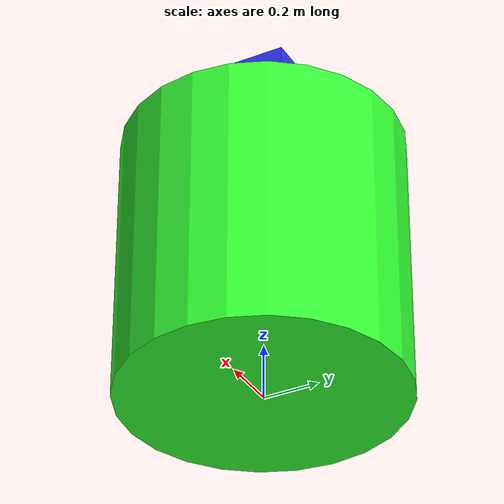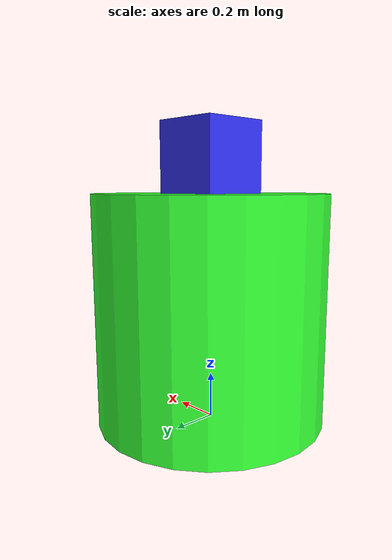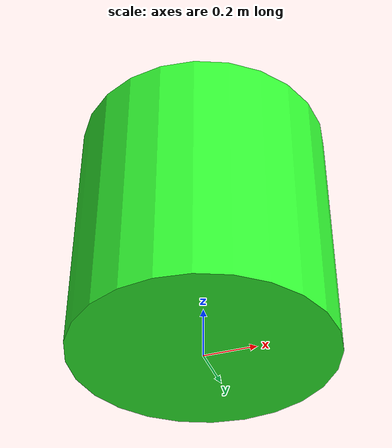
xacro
<?xml version="1.0"?>
<robot xmlns:xacro="http://www.ros.org/wiki/xacro"  name="bipedal_robot">

    <xacro:include filename="include.xacro" />

    <link name="world"></link>

    <joint name="base_joint" type="fixed">
        <origin xyz="0 0 0" rpy="0 0 0"/>
        <parent link="world"/>
        <child link="base_link"/>
    </joint>

    <link name="base_link">
        <visual>
            <origin xyz="0 0 0.5" rpy="0 0 0"/>
            <geometry>
                <cylinder radius="0.5" length="1.0"/>
            </geometry>
            <material name="green">
                <color rgba="0.2 1 0.2 1"/>
            </material>
        </visual>
        <collision>
            <origin xyz="0 0 0.5" rpy="0 0 0"/>
            <geometry>
                <cylinder radius="0.5" length="1.0"/>
            </geometry>
        </collision>
        <xacro:inertial_cylinder mass="0.5" length="1.0" radius="0.5">
            <origin xyz="0 0 0.5" rpy="0 0 0"/>
        </xacro:inertial_cylinder>
    </link>

    <joint name="rotating_joint" type="revolute">
        <origin xyz="0 0 1" rpy="0 0 0"/>
        <parent link="base_link"/>
        <child link="cube_link"/>
        <axis xyz="0 0 1"/>
        <limit lower="-1.5708" upper="1.5708" velocity="100" effort="100"/>
    </joint>

    <link name="cube_link">
        <visual>
            <origin xyz="0 0 0.15" rpy="0 0 0"/>
            <geometry>
                <box size="0.3 0.3 0.3" />
            </geometry>
            <material name="blue" />
        </visual>
        <collision>
            <origin xyz="0 0 0.15" rpy="0 0 0"/>
            <geometry>
                <box size="0.3 0.3 0.3" />
            </geometry>
        </collision>
        <xacro:inertial_box mass="0.5" x="0.3" y="0.3" z="0.3">
            <origin xyz="0 0 0.15" rpy="0 0 0"/>
        </xacro:inertial_box>
    </link>

    <xacro:include filename="test_servo_ros2_control.xacro" />

</robot>

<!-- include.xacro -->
<robot xmlns:xacro="http://www.ros.org/wiki/xacro" >

    <!-- This file is not a robot in and of itself, it just contains some useful tags that could be included in any robot -->

    <!-- Specify some colours -->

    <material name="white">
        <color rgba="1 1 1 1"/>
    </material>

    <material name="orange">
        <color rgba="1 0.3 0.1 1"/>
    </material>

    <material name="blue">
        <color rgba="0.2 0.2 1 1"/>
    </material>

    <!-- Specify some standard inertial calculations https://en.wikipedia.org/wiki/List_of_moments_of_inertia -->
    <!-- These make use of xacro's mathematical functionality -->

    <xacro:macro name="inertial_sphere" params="mass radius *origin">
        <inertial>
            <xacro:insert_block name="origin"/>
            <mass value="${mass}" />
            <inertia ixx="${(2/5) * mass * (radius*radius)}" ixy="0.0" ixz="0.0"
                    iyy="${(2/5) * mass * (radius*radius)}" iyz="0.0"
                    izz="${(2/5) * mass * (radius*radius)}" />
        </inertial>
    </xacro:macro>

    <xacro:macro name="inertial_box" params="mass x y z *origin">
        <inertial>
            <xacro:insert_block name="origin"/>
            <mass value="${mass}" />
            <inertia ixx="${(1/12) * mass * (y*y+z*z)}" ixy="0.0" ixz="0.0"
                    iyy="${(1/12) * mass * (x*x+z*z)}" iyz="0.0"
                    izz="${(1/12) * mass * (x*x+y*y)}" />
        </inertial>
    </xacro:macro>

    <xacro:macro name="inertial_cylinder" params="mass length radius *origin">
        <inertial>
            <xacro:insert_block name="origin"/>
            <mass value="${mass}" />
            <inertia ixx="${(1/12) * mass * (3*radius*radius + length*length)}" ixy="0.0" ixz="0.0"
                    iyy="${(1/12) * mass * (3*radius*radius + length*length)}" iyz="0.0"
                    izz="${(1/2) * mass * (radius*radius)}" />
        </inertial>
    </xacro:macro>

</robot>
